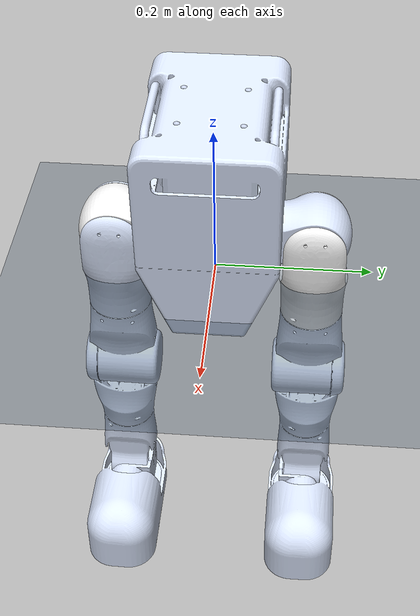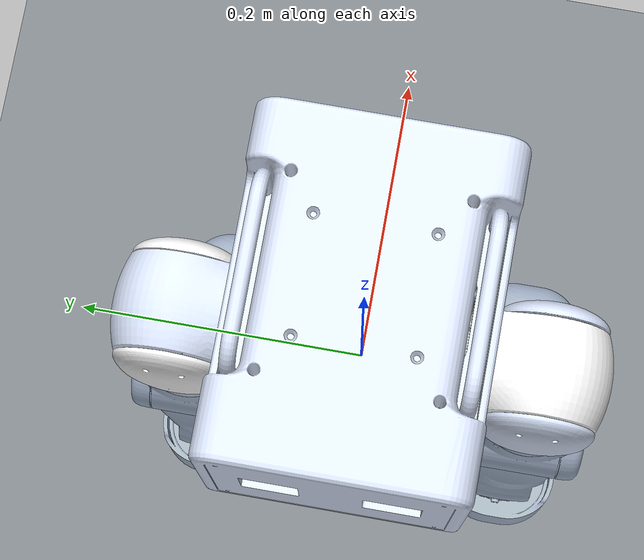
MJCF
<mujoco model="nlegs_body_scene">
  <include file="nlegs_body.xml"/>

  <asset>
    <texture name="ground_tex" type="2d" builtin="checker" rgb1=".2 .3 .4" rgb2=".1 .15 .2"
             width="512" height="512"/>
    <material name="ground_mat" texture="ground_tex" texrepeat="1 1" texuniform="true"/>
  </asset>

  <worldbody>
    <light directional="true" pos="0 0 4" dir="0 0 -1"/>
    <geom name="ground" type="plane" size="0 0 .05" material="ground_mat"
          condim="3" friction="1 .005 .0001"/>
  </worldbody>
</mujoco>

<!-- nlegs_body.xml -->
<mujoco model="nlegs_body">
  <compiler angle="radian" meshdir="../meshes" />
  <asset>
    <mesh name="base_link" content_type="model/stl" file="base_link.STL" />
    <mesh name="Link_R0" content_type="model/stl" file="Link_R0.STL" />
    <mesh name="Link_R1" content_type="model/stl" file="Link_R1.STL" />
    <mesh name="Link_R2" content_type="model/stl" file="Link_R2.STL" />
    <mesh name="Link_R3" content_type="model/stl" file="Link_R3.STL" />
    <mesh name="Link_R4" content_type="model/stl" file="Link_R4.STL" />
    <mesh name="Link_R5" content_type="model/stl" file="Link_R5.STL" />
    <mesh name="Link_R6" content_type="model/stl" file="Link_R6.STL" />
    <mesh name="Link_L0" content_type="model/stl" file="Link_L0.STL" />
    <mesh name="Link_L1" content_type="model/stl" file="Link_L1.STL" />
    <mesh name="Link_L2" content_type="model/stl" file="Link_L2.STL" />
    <mesh name="Link_L3" content_type="model/stl" file="Link_L3.STL" />
    <mesh name="Link_L4" content_type="model/stl" file="Link_L4.STL" />
    <mesh name="Link_L5" content_type="model/stl" file="Link_L5.STL" />
    <mesh name="Link_L6" content_type="model/stl" file="Link_L6.STL" />
  </asset>
  <worldbody>
    <body name="base">
      <freejoint name="base_freejoint" />
      <site name="imu" pos="0 0 0" quat="1 0 0 0" group="3" />
      <inertial pos="-0.00291796 0.000561409 0.136465" quat="0.000898118 0.736869 -0.00072205 0.676035" mass="3.53222" diaginertia="0.0153399 0.0119074 0.00964596" />
      <geom type="mesh" contype="0" conaffinity="0" group="1" density="0" rgba="0.866667 0.909804 1 1" mesh="base_link" />
      <body name="Link_R0" pos="-1.72967e-05 -0.00725581 0.055" quat="1 0 0 0.000690649">
        <inertial pos="-2.53606e-05 -0.0306482 2.59951e-05" quat="0.486707 0.511889 -0.499618 0.501466" mass="0.502308" diaginertia="0.000284369 0.000281148 0.000269266" />
        <geom type="mesh" contype="0" conaffinity="0" group="1" density="0" rgba="0.866667 0.909804 1 1" mesh="Link_R0" />
        <body name="Link_R1" pos="-8.2809e-05 -0.05995 0">
          <inertial pos="-0.00182667 -0.0503464 0.00218791" quat="-0.194569 0.681091 0.186675 0.680742" mass="0.568547" diaginertia="0.00033498 0.000286769 0.000261828" />
          <joint name="joint_R1" pos="0 0 0" axis="0 1 0" range="-3.14 1.05" limited="true" />
          <geom type="mesh" contype="0" conaffinity="0" group="1" density="0" rgba="1 1 1 1" mesh="Link_R1" />
          <body name="Link_R2" pos="-0.00107808 -0.0586429 0.00230332" quat="1 0 0 -0.000690649">
            <inertial pos="0.00478542 -0.00135143 -0.0712154" quat="0.69793 0.115711 0.130765 0.694554" mass="0.645323" diaginertia="0.000708688 0.000527504 0.00043512" />
            <joint name="joint_R2" pos="0 0 0" axis="1 0 0" range="-3.14 0.26" limited="true" />
            <geom type="mesh" contype="0" conaffinity="0" group="1" density="0" rgba="0.866667 0.909804 1 1" mesh="Link_R2" />
            <body name="Link_R3" pos="0.000918845 -0.00223913 -0.12148" quat="1 0 0 0.000690649">
              <inertial pos="-4.84411e-05 6.59057e-05 -0.0923408" quat="0.992043 0.125895 -5.22802e-05 -0.000678179" mass="0.630476" diaginertia="0.000549093 0.00043747 0.000386794" />
              <joint name="joint_R3" pos="0 0 0" axis="0 0 1" range="-2.75 2.75" limited="true" />
              <geom type="mesh" contype="0" conaffinity="0" group="1" density="0" rgba="0.866667 0.909804 1 1" mesh="Link_R3" />
              <body name="Link_R4" pos="-7.71372e-05 -0.00206349 -0.111981">
                <inertial pos="-9.97954e-05 -0.0054083 -0.136871" quat="0.997535 0.0701612 0.000528313 -0.00120351" mass="1.00073" diaginertia="0.00065966 0.000647225 0.000476143" />
                <joint name="joint_R4" pos="0 0 0" axis="0 1 0" range="0 1.92" limited="true" />
                <geom type="mesh" contype="0" conaffinity="0" group="1" density="0" rgba="0.866667 0.909804 1 1" mesh="Link_R4" />
                <body name="Link_R5" pos="-0.000153762 -0.00407261 -0.220962">
                  <inertial pos="0.052946 0.00463158 -0.00683664" quat="0.894843 -0.00908941 0.315541 0.315606" mass="0.500957" diaginertia="0.000284785 0.000247712 0.000216351" />
                  <joint name="joint_R5" pos="0 0 0" axis="0 1 0" range="-0.79 0.79" limited="true" />
                  <geom type="mesh" contype="0" conaffinity="0" group="1" density="0" rgba="0.866667 0.909804 1 1" mesh="Link_R5" />
                  <body name="Link_R6" pos="-0.00103467 -0.000920478 -0.0499908" quat="1 0 0 -0.000690649">
                    <inertial pos="0.064423 0.000152418 0.00168866" quat="0.00756373 0.712416 0.00745504 0.701677" mass="0.534272" diaginertia="0.00157119 0.00129045 0.000537947" />
                    <joint name="joint_R6" pos="0 0 0" axis="1 0 0" range="-0.35 0.35" limited="true" />
                    <geom type="mesh" contype="0" conaffinity="0" group="1" density="0" rgba="0.866667 0.909804 1 1" mesh="Link_R6" />
                    <geom type="capsule" fromto="-0.04 0.03 -0.0015 0.14 0.03 -0.0015" size="0.012" contype="1" conaffinity="1" group="3" rgba="0.9373 0.2667 0.2667 1" />
                    <geom type="capsule" fromto="-0.04 0 -0.0015 0.14 0 -0.0015" size="0.012" contype="1" conaffinity="1" group="3" rgba="0.9373 0.2667 0.2667 1" />
                    <geom type="capsule" fromto="-0.04 -0.03 -0.0015 0.14 -0.03 -0.0015" size="0.012" contype="1" conaffinity="1" group="3" rgba="0.9373 0.2667 0.2667 1" />
                  </body>
                </body>
              </body>
            </body>
          </body>
        </body>
      </body>
      <body name="Link_L0" pos="-1.72967e-05 0.00752419 0.0543733" quat="1 0 0 0.000690649">
        <inertial pos="5.68382e-05 0.0288131 0.000600595" quat="0.502142 0.498908 -0.512594 0.485996" mass="0.500394" diaginertia="0.000284348 0.000281127 0.000269261" />
        <geom type="mesh" contype="0" conaffinity="0" group="1" density="0" rgba="0.866667 0.909804 1 1" mesh="Link_L0" />
        <body name="Link_L1" pos="7.97699e-05 0.0577499 0.00062669">
          <inertial pos="-0.00187999 0.0523301 0.000927541" quat="0.195451 0.680365 -0.187848 0.680893" mass="0.564899" diaginertia="0.000334941 0.000286742 0.000261821" />
          <joint name="joint_L1" pos="0 0 0" axis="0 1 0" range="-3.14 1.04" limited="true" />
          <geom type="mesh" contype="0" conaffinity="0" group="1" density="0" rgba="0.866667 0.909804 1 1" mesh="Link_L1" />
          <body name="Link_L2" pos="-0.00101704 0.0606458 0.000769713">
            <inertial pos="0.00478532 0.000667644 -0.0714793" quat="0.695765 0.12684 0.118262 0.69702" mass="0.642942" diaginertia="0.000708645 0.000527471 0.000435091" />
            <joint name="joint_L2" pos="0 0 0" axis="1 0 0" range="-0.26 3.14" limited="true" />
            <geom type="mesh" contype="0" conaffinity="0" group="1" density="0" rgba="1 1 1 1" mesh="Link_L2" />
            <body name="Link_L3" pos="0.00112943 0.00107818 -0.121494">
              <inertial pos="8.30689e-05 -0.000946804 -0.092336" quat="0.991431 -0.130627 -0.000130029 -0.0007394" mass="0.630476" diaginertia="0.000549093 0.00043747 0.000386794" />
              <joint name="joint_L3" pos="0 0 0" axis="0 0 1" range="-2.75 2.75" limited="true" />
              <geom type="mesh" contype="0" conaffinity="0" group="1" density="0" rgba="0.866667 0.909804 1 1" mesh="Link_L3" />
              <body name="Link_L4" pos="0.000119312 0.000995147 -0.111996">
                <inertial pos="0.000150394 0.00410138 -0.136916" quat="0.997188 -0.0749212 -0.000716673 -0.00125247" mass="1.00074" diaginertia="0.000659656 0.000647221 0.000476143" />
                <joint name="joint_L4" pos="0 0 0" axis="0 1 0" range="0 1.92" limited="true" />
                <geom type="mesh" contype="0" conaffinity="0" group="1" density="0" rgba="0.866667 0.909804 1 1" mesh="Link_L4" />
                <body name="Link_L5" pos="0.000235429 0.00196364 -0.220991">
                  <inertial pos="0.0529266 -0.00534692 -0.00630584" quat="0.89443 0.00533565 0.313898 -0.318489" mass="0.500956" diaginertia="0.000284772 0.000247707 0.000216367" />
                  <joint name="joint_L5" pos="0 0 0" axis="0 1 0" range="-0.79 0.79" limited="true" />
                  <geom type="mesh" contype="0" conaffinity="0" group="1" density="0" rgba="0.866667 0.909804 1 1" mesh="Link_L5" />
                  <body name="Link_L6" pos="-0.00094815 0.00043388 -0.048668">
                    <inertial pos="0.0642417 -0.000802657 0.000413848" quat="-0.00265414 0.71184 -0.00363343 0.702327" mass="0.532943" diaginertia="0.00157116 0.00129043 0.000537937" />
                    <joint name="joint_L6" pos="0 0 0" axis="1 0 0" range="-0.35 0.35" limited="true" />
                    <geom type="mesh" contype="0" conaffinity="0" group="1" density="0" rgba="0.866667 0.909804 1 1" mesh="Link_L6" />
                    <geom type="capsule" fromto="-0.04 0.03 -0.0015 0.14 0.03 -0.0015" size="0.012" contype="1" conaffinity="1" group="3" rgba="0.9373 0.2667 0.2667 1" />
                    <geom type="capsule" fromto="-0.04 0 -0.0015 0.14 0 -0.0015" size="0.012" contype="1" conaffinity="1" group="3" rgba="0.9373 0.2667 0.2667 1" />
                    <geom type="capsule" fromto="-0.04 -0.03 -0.0015 0.14 -0.03 -0.0015" size="0.012" contype="1" conaffinity="1" group="3" rgba="0.9373 0.2667 0.2667 1" />
                  </body>
                </body>
              </body>
            </body>
          </body>
        </body>
      </body>
    </body>
  </worldbody>
  <actuator>
    <!-- 数值由训练配置/deploy.yaml 提供；这里只保留 sim2sim 需要的执行器名称和关节映射。 -->
    <position name="joint_R1_servo" joint="joint_R1" />
    <position name="joint_R2_servo" joint="joint_R2" />
    <position name="joint_R3_servo" joint="joint_R3" />
    <position name="joint_R4_servo" joint="joint_R4" />
    <position name="joint_R5_servo" joint="joint_R5" />
    <position name="joint_R6_servo" joint="joint_R6" />
    <position name="joint_L1_servo" joint="joint_L1" />
    <position name="joint_L2_servo" joint="joint_L2" />
    <position name="joint_L3_servo" joint="joint_L3" />
    <position name="joint_L4_servo" joint="joint_L4" />
    <position name="joint_L5_servo" joint="joint_L5" />
    <position name="joint_L6_servo" joint="joint_L6" />
  </actuator>
  <sensor>
    <framequat name="imu_quat" objtype="site" objname="imu" />
    <gyro name="imu_gyro" site="imu" />
    <accelerometer name="imu_acc" site="imu" />
    <framepos name="frame_pos" objtype="site" objname="imu" />
    <framelinvel name="frame_vel" objtype="site" objname="imu" />
  </sensor>
</mujoco>
